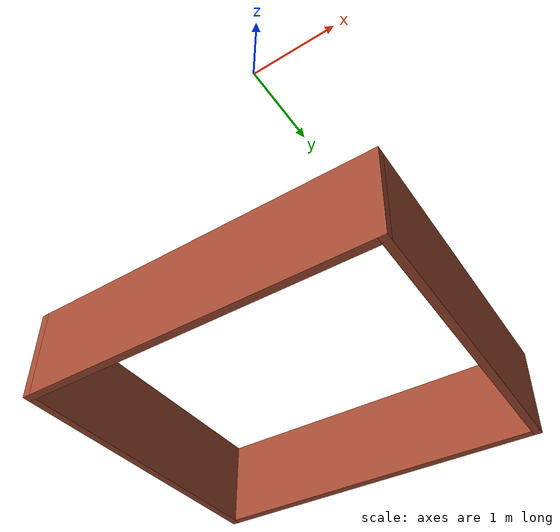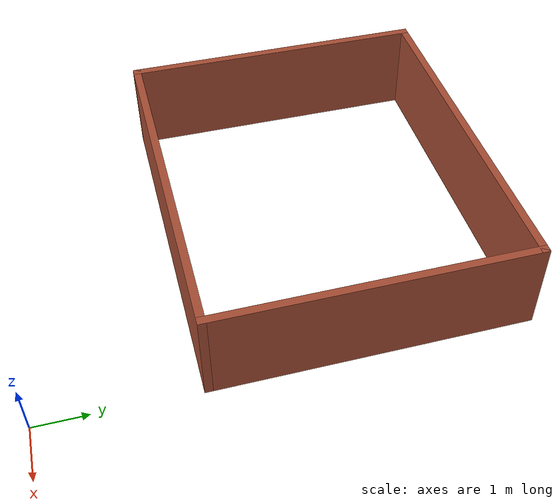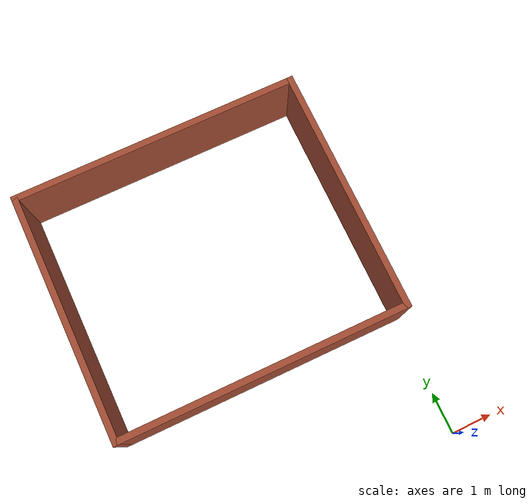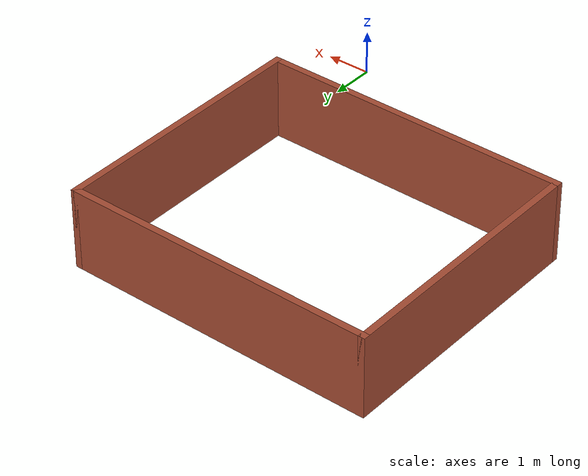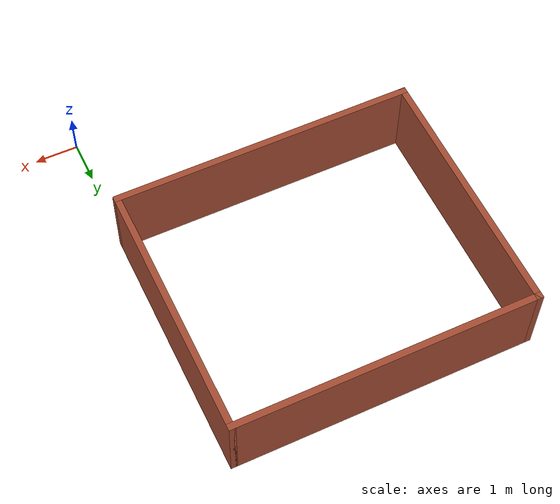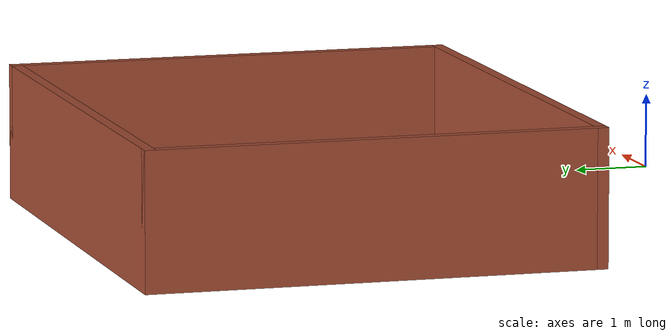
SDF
<?xml version='1.0'?>
<sdf version='1.7'>
  <model name='closed_room_6x7'>
    <pose>-3.421 4.4455 0 0 -0 0</pose>
    <link name='Wall_1'>
      <collision name='Wall_1_Collision'>
        <geometry>
          <box>
            <size>7 0.15 1.8</size>
          </box>
        </geometry>
        <pose>0 0 0.9 0 -0 0</pose>
      </collision>
      <visual name='Wall_1_Visual'>
        <pose>0 0 0.9 0 -0 0</pose>
        <geometry>
          <box>
            <size>7 0.15 1.8</size>
          </box>
        </geometry>
        <material>
          <script>
            <uri>file://media/materials/scripts/gazebo.material</uri>
            <name>Gazebo/Bricks</name>
          </script>
          <ambient>1 1 1 1</ambient>
        </material>
        <meta>
          <layer>0</layer>
        </meta>
      </visual>
      <pose>0 4.3705 0 0 -0 0</pose>
    </link>
    <link name='Wall_2'>
      <collision name='Wall_2_Collision'>
        <geometry>
          <box>
            <size>6 0.15 1.8</size>
          </box>
        </geometry>
        <pose>0 0 0.9 0 -0 0</pose>
      </collision>
      <visual name='Wall_2_Visual'>
        <pose>0 0 0.9 0 -0 0</pose>
        <geometry>
          <box>
            <size>6 0.15 1.8</size>
          </box>
        </geometry>
        <material>
          <script>
            <uri>file://media/materials/scripts/gazebo.material</uri>
            <name>Gazebo/Bricks</name>
          </script>
          <ambient>1 1 1 1</ambient>
        </material>
        <meta>
          <layer>0</layer>
        </meta>
      </visual>
      <pose>3.425 1.4455 0 0 -0 -1.5708</pose>
    </link>
    <link name='Wall_3'>
      <collision name='Wall_3_Collision'>
        <geometry>
          <box>
            <size>7 0.15 1.8</size>
          </box>
        </geometry>
        <pose>0 0 0.9 0 -0 0</pose>
      </collision>
      <visual name='Wall_3_Visual'>
        <pose>0 0 0.9 0 -0 0</pose>
        <geometry>
          <box>
            <size>7 0.15 1.8</size>
          </box>
        </geometry>
        <material>
          <script>
            <uri>file://media/materials/scripts/gazebo.material</uri>
            <name>Gazebo/Bricks</name>
          </script>
          <ambient>1 1 1 1</ambient>
        </material>
        <meta>
          <layer>0</layer>
        </meta>
      </visual>
      <pose>0 -1.4795 0 0 -0 3.14159</pose>
    </link>
    <link name='Wall_4'>
      <collision name='Wall_4_Collision'>
        <geometry>
          <box>
            <size>6 0.15 1.8</size>
          </box>
        </geometry>
        <pose>0 0 0.9 0 -0 0</pose>
      </collision>
      <visual name='Wall_4_Visual'>
        <pose>0 0 0.9 0 -0 0</pose>
        <geometry>
          <box>
            <size>6 0.15 1.8</size>
          </box>
        </geometry>
        <material>
          <script>
            <uri>file://media/materials/scripts/gazebo.material</uri>
            <name>Gazebo/Bricks</name>
          </script>
          <ambient>1 1 1 1</ambient>
        </material>
        <meta>
          <layer>0</layer>
        </meta>
      </visual>
      <pose>-3.425 1.4455 0 0 -0 1.5708</pose>
    </link>
    <static>1</static>
  </model>
</sdf>
